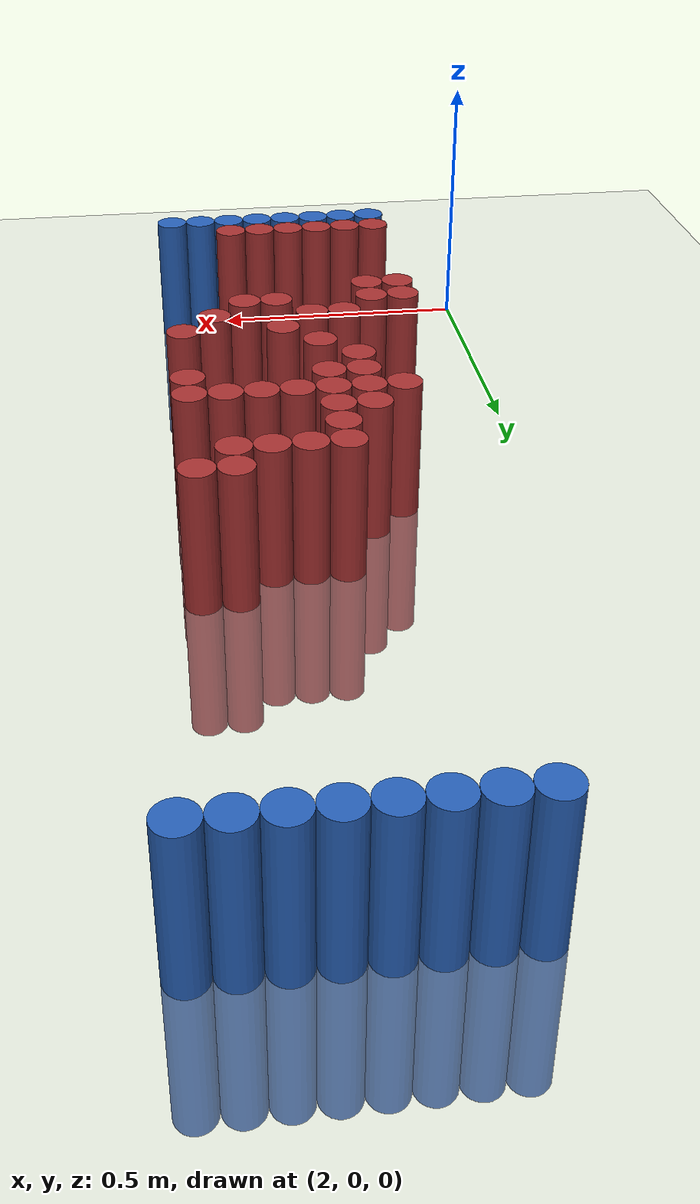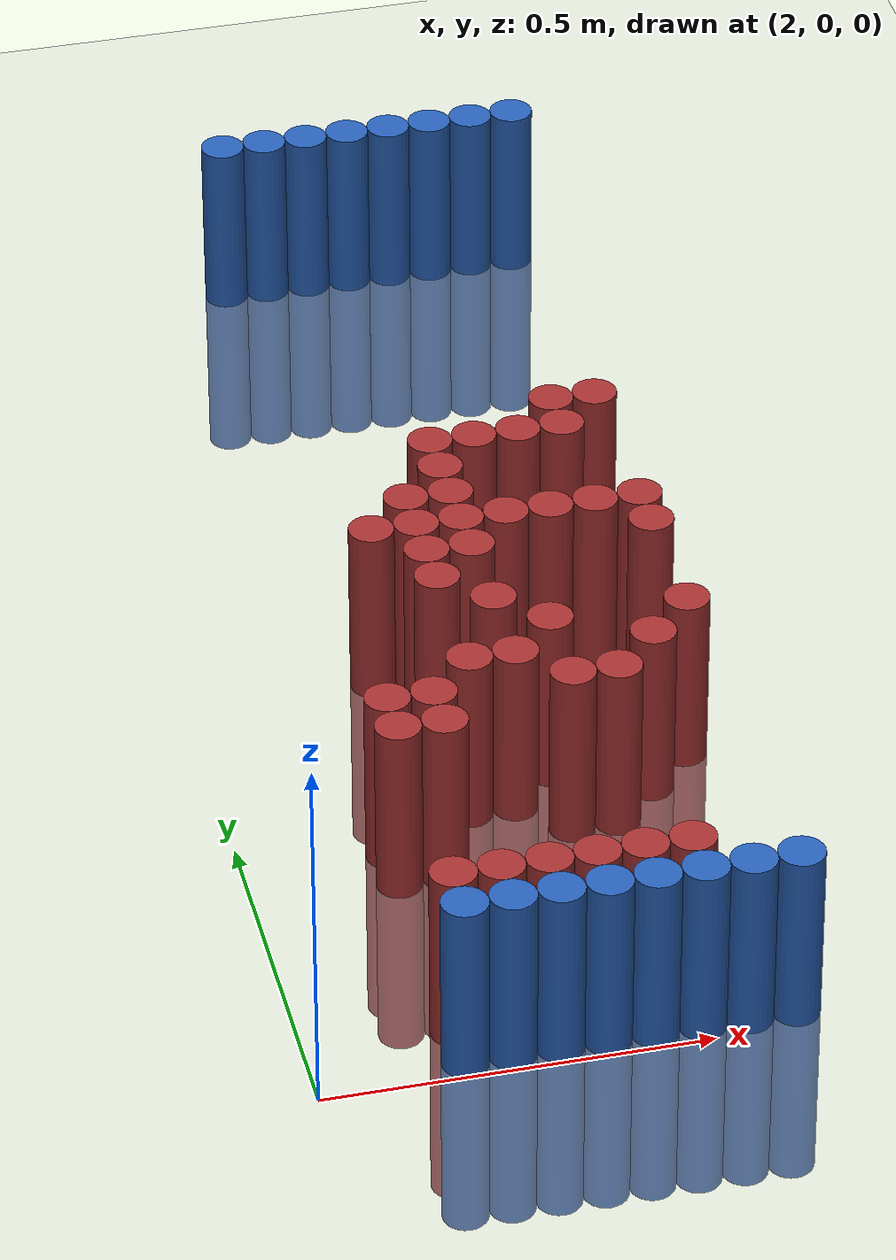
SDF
<sdf version="1.6">
 <world name="default">
  <model name="ground_plane">
   <static>1</static>
   <link name="link">
    <collision name="collision">
     <geometry><plane><normal>0 0 1</normal><size>100 100</size></plane></geometry>
     <surface><friction><ode><mu>100</mu><mu2>50</mu2></ode></friction></surface>
    </collision>
    <visual name="visual">
     <cast_shadows>0</cast_shadows>
     <geometry><plane><normal>0 0 1</normal><size>100 100</size></plane></geometry>
     <material>
      <script><uri>file://media/materials/scripts/gazebo.material</uri><name>Gazebo/Grey</name></script>
     </material>
    </visual>
   </link>
  </model>
  <model name="unit_cylinder_98">
   <static>1</static>
   <pose>2.250000 1.770000 0.000000 0.000000 0.000000 0.000000</pose>
   <link name="link">
    <inertial>
     <mass>1</mass>
     <inertia><ixx>0.145833</ixx><ixy>0</ixy><ixz>0</ixz><iyy>0.145833</iyy><iyz>0</iyz><izz>0.125</izz></inertia>
    </inertial>
    <collision name="collision">
     <geometry><cylinder><radius>0.030000</radius><length>0.5</length></cylinder></geometry>
    </collision>
    <visual name="visual">
     <geometry><cylinder><radius>0.030000</radius><length>0.5</length></cylinder></geometry>
     <material>
      <ambient>0.152000 0.379000 0.720000 1</ambient>
      <diffuse>0.152000 0.379000 0.720000 1</diffuse>
     </material>
     <material>
      <script><name>Gazebo/Grey</name><uri>file://media/materials/scripts/gazebo.material</uri></script>
     </material>
    </visual>
   </link>
  </model>
  <model name="unit_cylinder_99">
   <static>1</static>
   <pose>2.310000 1.770000 0.000000 0.000000 0.000000 0.000000</pose>
   <link name="link">
    <inertial>
     <mass>1</mass>
     <inertia><ixx>0.145833</ixx><ixy>0</ixy><ixz>0</ixz><iyy>0.145833</iyy><iyz>0</iyz><izz>0.125</izz></inertia>
    </inertial>
    <collision name="collision">
     <geometry><cylinder><radius>0.030000</radius><length>0.5</length></cylinder></geometry>
    </collision>
    <visual name="visual">
     <geometry><cylinder><radius>0.030000</radius><length>0.5</length></cylinder></geometry>
     <material>
      <ambient>0.152000 0.379000 0.720000 1</ambient>
      <diffuse>0.152000 0.379000 0.720000 1</diffuse>
     </material>
     <material>
      <script><name>Gazebo/Grey</name><uri>file://media/materials/scripts/gazebo.material</uri></script>
     </material>
    </visual>
   </link>
  </model>
  <model name="unit_cylinder_100">
   <static>1</static>
   <pose>2.370000 1.770000 0.000000 0.000000 0.000000 0.000000</pose>
   <link name="link">
    <inertial>
     <mass>1</mass>
     <inertia><ixx>0.145833</ixx><ixy>0</ixy><ixz>0</ixz><iyy>0.145833</iyy><iyz>0</iyz><izz>0.125</izz></inertia>
    </inertial>
    <collision name="collision">
     <geometry><cylinder><radius>0.030000</radius><length>0.5</length></cylinder></geometry>
    </collision>
    <visual name="visual">
     <geometry><cylinder><radius>0.030000</radius><length>0.5</length></cylinder></geometry>
     <material>
      <ambient>0.152000 0.379000 0.720000 1</ambient>
      <diffuse>0.152000 0.379000 0.720000 1</diffuse>
     </material>
     <material>
      <script><name>Gazebo/Grey</name><uri>file://media/materials/scripts/gazebo.material</uri></script>
     </material>
    </visual>
   </link>
  </model>
  <model name="unit_cylinder_101">
   <static>1</static>
   <pose>2.430000 1.770000 0.000000 0.000000 0.000000 0.000000</pose>
   <link name="link">
    <inertial>
     <mass>1</mass>
     <inertia><ixx>0.145833</ixx><ixy>0</ixy><ixz>0</ixz><iyy>0.145833</iyy><iyz>0</iyz><izz>0.125</izz></inertia>
    </inertial>
    <collision name="collision">
     <geometry><cylinder><radius>0.030000</radius><length>0.5</length></cylinder></geometry>
    </collision>
    <visual name="visual">
     <geometry><cylinder><radius>0.030000</radius><length>0.5</length></cylinder></geometry>
     <material>
      <ambient>0.152000 0.379000 0.720000 1</ambient>
      <diffuse>0.152000 0.379000 0.720000 1</diffuse>
     </material>
     <material>
      <script><name>Gazebo/Grey</name><uri>file://media/materials/scripts/gazebo.material</uri></script>
     </material>
    </visual>
   </link>
  </model>
  <model name="unit_cylinder_102">
   <static>1</static>
   <pose>2.490000 1.770000 0.000000 0.000000 0.000000 0.000000</pose>
   <link name="link">
    <inertial>
     <mass>1</mass>
     <inertia><ixx>0.145833</ixx><ixy>0</ixy><ixz>0</ixz><iyy>0.145833</iyy><iyz>0</iyz><izz>0.125</izz></inertia>
    </inertial>
    <collision name="collision">
     <geometry><cylinder><radius>0.030000</radius><length>0.5</length></cylinder></geometry>
    </collision>
    <visual name="visual">
     <geometry><cylinder><radius>0.030000</radius><length>0.5</length></cylinder></geometry>
     <material>
      <ambient>0.152000 0.379000 0.720000 1</ambient>
      <diffuse>0.152000 0.379000 0.720000 1</diffuse>
     </material>
     <material>
      <script><name>Gazebo/Grey</name><uri>file://media/materials/scripts/gazebo.material</uri></script>
     </material>
    </visual>
   </link>
  </model>
  <model name="unit_cylinder_103">
   <static>1</static>
   <pose>2.550000 1.770000 0.000000 0.000000 0.000000 0.000000</pose>
   <link name="link">
    <inertial>
     <mass>1</mass>
     <inertia><ixx>0.145833</ixx><ixy>0</ixy><ixz>0</ixz><iyy>0.145833</iyy><iyz>0</iyz><izz>0.125</izz></inertia>
    </inertial>
    <collision name="collision">
     <geometry><cylinder><radius>0.030000</radius><length>0.5</length></cylinder></geometry>
    </collision>
    <visual name="visual">
     <geometry><cylinder><radius>0.030000</radius><length>0.5</length></cylinder></geometry>
     <material>
      <ambient>0.152000 0.379000 0.720000 1</ambient>
      <diffuse>0.152000 0.379000 0.720000 1</diffuse>
     </material>
     <material>
      <script><name>Gazebo/Grey</name><uri>file://media/materials/scripts/gazebo.material</uri></script>
     </material>
    </visual>
   </link>
  </model>
  <model name="unit_cylinder_104">
   <static>1</static>
   <pose>2.610000 1.770000 0.000000 0.000000 0.000000 0.000000</pose>
   <link name="link">
    <inertial>
     <mass>1</mass>
     <inertia><ixx>0.145833</ixx><ixy>0</ixy><ixz>0</ixz><iyy>0.145833</iyy><iyz>0</iyz><izz>0.125</izz></inertia>
    </inertial>
    <collision name="collision">
     <geometry><cylinder><radius>0.030000</radius><length>0.5</length></cylinder></geometry>
    </collision>
    <visual name="visual">
     <geometry><cylinder><radius>0.030000</radius><length>0.5</length></cylinder></geometry>
     <material>
      <ambient>0.152000 0.379000 0.720000 1</ambient>
      <diffuse>0.152000 0.379000 0.720000 1</diffuse>
     </material>
     <material>
      <script><name>Gazebo/Grey</name><uri>file://media/materials/scripts/gazebo.material</uri></script>
     </material>
    </visual>
   </link>
  </model>
  <model name="unit_cylinder_105">
   <static>1</static>
   <pose>2.670000 1.770000 0.000000 0.000000 0.000000 0.000000</pose>
   <link name="link">
    <inertial>
     <mass>1</mass>
     <inertia><ixx>0.145833</ixx><ixy>0</ixy><ixz>0</ixz><iyy>0.145833</iyy><iyz>0</iyz><izz>0.125</izz></inertia>
    </inertial>
    <collision name="collision">
     <geometry><cylinder><radius>0.030000</radius><length>0.5</length></cylinder></geometry>
    </collision>
    <visual name="visual">
     <geometry><cylinder><radius>0.030000</radius><length>0.5</length></cylinder></geometry>
     <material>
      <ambient>0.152000 0.379000 0.720000 1</ambient>
      <diffuse>0.152000 0.379000 0.720000 1</diffuse>
     </material>
     <material>
      <script><name>Gazebo/Grey</name><uri>file://media/materials/scripts/gazebo.material</uri></script>
     </material>
    </visual>
   </link>
  </model>
  <model name="unit_cylinder_172">
   <static>1</static>
   <pose>2.550000 1.050000 0.000000 0.000000 0.000000 0.000000</pose>
   <link name="link">
    <inertial>
     <mass>1</mass>
     <inertia><ixx>0.145833</ixx><ixy>0</ixy><ixz>0</ixz><iyy>0.145833</iyy><iyz>0</iyz><izz>0.125</izz></inertia>
    </inertial>
    <collision name="collision">
     <geometry><cylinder><radius>0.030000</radius><length>0.5</length></cylinder></geometry>
    </collision>
    <visual name="visual">
     <geometry><cylinder><radius>0.030000</radius><length>0.5</length></cylinder></geometry>
     <material>
      <ambient>0.648000 0.192000 0.192000 1</ambient>
      <diffuse>0.648000 0.192000 0.192000 1</diffuse>
     </material>
     <material>
      <script><name>Gazebo/Grey</name><uri>file://media/materials/scripts/gazebo.material</uri></script>
     </material>
    </visual>
   </link>
  </model>
  <model name="unit_cylinder_173">
   <static>1</static>
   <pose>2.610000 1.050000 0.000000 0.000000 0.000000 0.000000</pose>
   <link name="link">
    <inertial>
     <mass>1</mass>
     <inertia><ixx>0.145833</ixx><ixy>0</ixy><ixz>0</ixz><iyy>0.145833</iyy><iyz>0</iyz><izz>0.125</izz></inertia>
    </inertial>
    <collision name="collision">
     <geometry><cylinder><radius>0.030000</radius><length>0.5</length></cylinder></geometry>
    </collision>
    <visual name="visual">
     <geometry><cylinder><radius>0.030000</radius><length>0.5</length></cylinder></geometry>
     <material>
      <ambient>0.648000 0.192000 0.192000 1</ambient>
      <diffuse>0.648000 0.192000 0.192000 1</diffuse>
     </material>
     <material>
      <script><name>Gazebo/Grey</name><uri>file://media/materials/scripts/gazebo.material</uri></script>
     </material>
    </visual>
   </link>
  </model>
  <model name="unit_cylinder_179">
   <static>1</static>
   <pose>2.370000 0.990000 0.000000 0.000000 0.000000 0.000000</pose>
   <link name="link">
    <inertial>
     <mass>1</mass>
     <inertia><ixx>0.145833</ixx><ixy>0</ixy><ixz>0</ixz><iyy>0.145833</iyy><iyz>0</iyz><izz>0.125</izz></inertia>
    </inertial>
    <collision name="collision">
     <geometry><cylinder><radius>0.030000</radius><length>0.5</length></cylinder></geometry>
    </collision>
    <visual name="visual">
     <geometry><cylinder><radius>0.030000</radius><length>0.5</length></cylinder></geometry>
     <material>
      <ambient>0.648000 0.192000 0.192000 1</ambient>
      <diffuse>0.648000 0.192000 0.192000 1</diffuse>
     </material>
     <material>
      <script><name>Gazebo/Grey</name><uri>file://media/materials/scripts/gazebo.material</uri></script>
     </material>
    </visual>
   </link>
  </model>
  <model name="unit_cylinder_180">
   <static>1</static>
   <pose>2.430000 0.990000 0.000000 0.000000 0.000000 0.000000</pose>
   <link name="link">
    <inertial>
     <mass>1</mass>
     <inertia><ixx>0.145833</ixx><ixy>0</ixy><ixz>0</ixz><iyy>0.145833</iyy><iyz>0</iyz><izz>0.125</izz></inertia>
    </inertial>
    <collision name="collision">
     <geometry><cylinder><radius>0.030000</radius><length>0.5</length></cylinder></geometry>
    </collision>
    <visual name="visual">
     <geometry><cylinder><radius>0.030000</radius><length>0.5</length></cylinder></geometry>
     <material>
      <ambient>0.648000 0.192000 0.192000 1</ambient>
      <diffuse>0.648000 0.192000 0.192000 1</diffuse>
     </material>
     <material>
      <script><name>Gazebo/Grey</name><uri>file://media/materials/scripts/gazebo.material</uri></script>
     </material>
    </visual>
   </link>
  </model>
  <model name="unit_cylinder_181">
   <static>1</static>
   <pose>2.490000 0.990000 0.000000 0.000000 0.000000 0.000000</pose>
   <link name="link">
    <inertial>
     <mass>1</mass>
     <inertia><ixx>0.145833</ixx><ixy>0</ixy><ixz>0</ixz><iyy>0.145833</iyy><iyz>0</iyz><izz>0.125</izz></inertia>
    </inertial>
    <collision name="collision">
     <geometry><cylinder><radius>0.030000</radius><length>0.5</length></cylinder></geometry>
    </collision>
    <visual name="visual">
     <geometry><cylinder><radius>0.030000</radius><length>0.5</length></cylinder></geometry>
     <material>
      <ambient>0.648000 0.192000 0.192000 1</ambient>
      <diffuse>0.648000 0.192000 0.192000 1</diffuse>
     </material>
     <material>
      <script><name>Gazebo/Grey</name><uri>file://media/materials/scripts/gazebo.material</uri></script>
     </material>
    </visual>
   </link>
  </model>
  <model name="unit_cylinder_182">
   <static>1</static>
   <pose>2.550000 0.990000 0.000000 0.000000 0.000000 0.000000</pose>
   <link name="link">
    <inertial>
     <mass>1</mass>
     <inertia><ixx>0.145833</ixx><ixy>0</ixy><ixz>0</ixz><iyy>0.145833</iyy><iyz>0</iyz><izz>0.125</izz></inertia>
    </inertial>
    <collision name="collision">
     <geometry><cylinder><radius>0.030000</radius><length>0.5</length></cylinder></geometry>
    </collision>
    <visual name="visual">
     <geometry><cylinder><radius>0.030000</radius><length>0.5</length></cylinder></geometry>
     <material>
      <ambient>0.648000 0.192000 0.192000 1</ambient>
      <diffuse>0.648000 0.192000 0.192000 1</diffuse>
     </material>
     <material>
      <script><name>Gazebo/Grey</name><uri>file://media/materials/scripts/gazebo.material</uri></script>
     </material>
    </visual>
   </link>
  </model>
  <model name="unit_cylinder_188">
   <static>1</static>
   <pose>2.370000 0.930000 0.000000 0.000000 0.000000 0.000000</pose>
   <link name="link">
    <inertial>
     <mass>1</mass>
     <inertia><ixx>0.145833</ixx><ixy>0</ixy><ixz>0</ixz><iyy>0.145833</iyy><iyz>0</iyz><izz>0.125</izz></inertia>
    </inertial>
    <collision name="collision">
     <geometry><cylinder><radius>0.030000</radius><length>0.5</length></cylinder></geometry>
    </collision>
    <visual name="visual">
     <geometry><cylinder><radius>0.030000</radius><length>0.5</length></cylinder></geometry>
     <material>
      <ambient>0.648000 0.192000 0.192000 1</ambient>
      <diffuse>0.648000 0.192000 0.192000 1</diffuse>
     </material>
     <material>
      <script><name>Gazebo/Grey</name><uri>file://media/materials/scripts/gazebo.material</uri></script>
     </material>
    </visual>
   </link>
  </model>
  <model name="unit_cylinder_191">
   <static>1</static>
   <pose>2.310000 0.870000 0.000000 0.000000 0.000000 0.000000</pose>
   <link name="link">
    <inertial>
     <mass>1</mass>
     <inertia><ixx>0.145833</ixx><ixy>0</ixy><ixz>0</ixz><iyy>0.145833</iyy><iyz>0</iyz><izz>0.125</izz></inertia>
    </inertial>
    <collision name="collision">
     <geometry><cylinder><radius>0.030000</radius><length>0.5</length></cylinder></geometry>
    </collision>
    <visual name="visual">
     <geometry><cylinder><radius>0.030000</radius><length>0.5</length></cylinder></geometry>
     <material>
      <ambient>0.648000 0.192000 0.192000 1</ambient>
      <diffuse>0.648000 0.192000 0.192000 1</diffuse>
     </material>
     <material>
      <script><name>Gazebo/Grey</name><uri>file://media/materials/scripts/gazebo.material</uri></script>
     </material>
    </visual>
   </link>
  </model>
  <model name="unit_cylinder_192">
   <static>1</static>
   <pose>2.370000 0.870000 0.000000 0.000000 0.000000 0.000000</pose>
   <link name="link">
    <inertial>
     <mass>1</mass>
     <inertia><ixx>0.145833</ixx><ixy>0</ixy><ixz>0</ixz><iyy>0.145833</iyy><iyz>0</iyz><izz>0.125</izz></inertia>
    </inertial>
    <collision name="collision">
     <geometry><cylinder><radius>0.030000</radius><length>0.5</length></cylinder></geometry>
    </collision>
    <visual name="visual">
     <geometry><cylinder><radius>0.030000</radius><length>0.5</length></cylinder></geometry>
     <material>
      <ambient>0.648000 0.192000 0.192000 1</ambient>
      <diffuse>0.648000 0.192000 0.192000 1</diffuse>
     </material>
     <material>
      <script><name>Gazebo/Grey</name><uri>file://media/materials/scripts/gazebo.material</uri></script>
     </material>
    </visual>
   </link>
  </model>
  <model name="unit_cylinder_198">
   <static>1</static>
   <pose>2.250000 0.810000 0.000000 0.000000 0.000000 0.000000</pose>
   <link name="link">
    <inertial>
     <mass>1</mass>
     <inertia><ixx>0.145833</ixx><ixy>0</ixy><ixz>0</ixz><iyy>0.145833</iyy><iyz>0</iyz><izz>0.125</izz></inertia>
    </inertial>
    <collision name="collision">
     <geometry><cylinder><radius>0.030000</radius><length>0.5</length></cylinder></geometry>
    </collision>
    <visual name="visual">
     <geometry><cylinder><radius>0.030000</radius><length>0.5</length></cylinder></geometry>
     <material>
      <ambient>0.648000 0.192000 0.192000 1</ambient>
      <diffuse>0.648000 0.192000 0.192000 1</diffuse>
     </material>
     <material>
      <script><name>Gazebo/Grey</name><uri>file://media/materials/scripts/gazebo.material</uri></script>
     </material>
    </visual>
   </link>
  </model>
  <model name="unit_cylinder_199">
   <static>1</static>
   <pose>2.310000 0.810000 0.000000 0.000000 0.000000 0.000000</pose>
   <link name="link">
    <inertial>
     <mass>1</mass>
     <inertia><ixx>0.145833</ixx><ixy>0</ixy><ixz>0</ixz><iyy>0.145833</iyy><iyz>0</iyz><izz>0.125</izz></inertia>
    </inertial>
    <collision name="collision">
     <geometry><cylinder><radius>0.030000</radius><length>0.5</length></cylinder></geometry>
    </collision>
    <visual name="visual">
     <geometry><cylinder><radius>0.030000</radius><length>0.5</length></cylinder></geometry>
     <material>
      <ambient>0.648000 0.192000 0.192000 1</ambient>
      <diffuse>0.648000 0.192000 0.192000 1</diffuse>
     </material>
     <material>
      <script><name>Gazebo/Grey</name><uri>file://media/materials/scripts/gazebo.material</uri></script>
     </material>
    </visual>
   </link>
  </model>
  <model name="unit_cylinder_200">
   <static>1</static>
   <pose>2.370000 0.810000 0.000000 0.000000 0.000000 0.000000</pose>
   <link name="link">
    <inertial>
     <mass>1</mass>
     <inertia><ixx>0.145833</ixx><ixy>0</ixy><ixz>0</ixz><iyy>0.145833</iyy><iyz>0</iyz><izz>0.125</izz></inertia>
    </inertial>
    <collision name="collision">
     <geometry><cylinder><radius>0.030000</radius><length>0.5</length></cylinder></geometry>
    </collision>
    <visual name="visual">
     <geometry><cylinder><radius>0.030000</radius><length>0.5</length></cylinder></geometry>
     <material>
      <ambient>0.648000 0.192000 0.192000 1</ambient>
      <diffuse>0.648000 0.192000 0.192000 1</diffuse>
     </material>
     <material>
      <script><name>Gazebo/Grey</name><uri>file://media/materials/scripts/gazebo.material</uri></script>
     </material>
    </visual>
   </link>
  </model>
  <model name="unit_cylinder_201">
   <static>1</static>
   <pose>2.430000 0.810000 0.000000 0.000000 0.000000 0.000000</pose>
   <link name="link">
    <inertial>
     <mass>1</mass>
     <inertia><ixx>0.145833</ixx><ixy>0</ixy><ixz>0</ixz><iyy>0.145833</iyy><iyz>0</iyz><izz>0.125</izz></inertia>
    </inertial>
    <collision name="collision">
     <geometry><cylinder><radius>0.030000</radius><length>0.5</length></cylinder></geometry>
    </collision>
    <visual name="visual">
     <geometry><cylinder><radius>0.030000</radius><length>0.5</length></cylinder></geometry>
     <material>
      <ambient>0.648000 0.192000 0.192000 1</ambient>
      <diffuse>0.648000 0.192000 0.192000 1</diffuse>
     </material>
     <material>
      <script><name>Gazebo/Grey</name><uri>file://media/materials/scripts/gazebo.material</uri></script>
     </material>
    </visual>
   </link>
  </model>
  <model name="unit_cylinder_202">
   <static>1</static>
   <pose>2.490000 0.810000 0.000000 0.000000 0.000000 0.000000</pose>
   <link name="link">
    <inertial>
     <mass>1</mass>
     <inertia><ixx>0.145833</ixx><ixy>0</ixy><ixz>0</ixz><iyy>0.145833</iyy><iyz>0</iyz><izz>0.125</izz></inertia>
    </inertial>
    <collision name="collision">
     <geometry><cylinder><radius>0.030000</radius><length>0.5</length></cylinder></geometry>
    </collision>
    <visual name="visual">
     <geometry><cylinder><radius>0.030000</radius><length>0.5</length></cylinder></geometry>
     <material>
      <ambient>0.648000 0.192000 0.192000 1</ambient>
      <diffuse>0.648000 0.192000 0.192000 1</diffuse>
     </material>
     <material>
      <script><name>Gazebo/Grey</name><uri>file://media/materials/scripts/gazebo.material</uri></script>
     </material>
    </visual>
   </link>
  </model>
  <model name="unit_cylinder_203">
   <static>1</static>
   <pose>2.550000 0.810000 0.000000 0.000000 0.000000 0.000000</pose>
   <link name="link">
    <inertial>
     <mass>1</mass>
     <inertia><ixx>0.145833</ixx><ixy>0</ixy><ixz>0</ixz><iyy>0.145833</iyy><iyz>0</iyz><izz>0.125</izz></inertia>
    </inertial>
    <collision name="collision">
     <geometry><cylinder><radius>0.030000</radius><length>0.5</length></cylinder></geometry>
    </collision>
    <visual name="visual">
     <geometry><cylinder><radius>0.030000</radius><length>0.5</length></cylinder></geometry>
     <material>
      <ambient>0.648000 0.192000 0.192000 1</ambient>
      <diffuse>0.648000 0.192000 0.192000 1</diffuse>
     </material>
     <material>
      <script><name>Gazebo/Grey</name><uri>file://media/materials/scripts/gazebo.material</uri></script>
     </material>
    </visual>
   </link>
  </model>
  <model name="unit_cylinder_204">
   <static>1</static>
   <pose>2.610000 0.810000 0.000000 0.000000 0.000000 0.000000</pose>
   <link name="link">
    <inertial>
     <mass>1</mass>
     <inertia><ixx>0.145833</ixx><ixy>0</ixy><ixz>0</ixz><iyy>0.145833</iyy><iyz>0</iyz><izz>0.125</izz></inertia>
    </inertial>
    <collision name="collision">
     <geometry><cylinder><radius>0.030000</radius><length>0.5</length></cylinder></geometry>
    </collision>
    <visual name="visual">
     <geometry><cylinder><radius>0.030000</radius><length>0.5</length></cylinder></geometry>
     <material>
      <ambient>0.648000 0.192000 0.192000 1</ambient>
      <diffuse>0.648000 0.192000 0.192000 1</diffuse>
     </material>
     <material>
      <script><name>Gazebo/Grey</name><uri>file://media/materials/scripts/gazebo.material</uri></script>
     </material>
    </visual>
   </link>
  </model>
  <model name="unit_cylinder_211">
   <static>1</static>
   <pose>2.310000 0.750000 0.000000 0.000000 0.000000 0.000000</pose>
   <link name="link">
    <inertial>
     <mass>1</mass>
     <inertia><ixx>0.145833</ixx><ixy>0</ixy><ixz>0</ixz><iyy>0.145833</iyy><iyz>0</iyz><izz>0.125</izz></inertia>
    </inertial>
    <collision name="collision">
     <geometry><cylinder><radius>0.030000</radius><length>0.5</length></cylinder></geometry>
    </collision>
    <visual name="visual">
     <geometry><cylinder><radius>0.030000</radius><length>0.5</length></cylinder></geometry>
     <material>
      <ambient>0.648000 0.192000 0.192000 1</ambient>
      <diffuse>0.648000 0.192000 0.192000 1</diffuse>
     </material>
     <material>
      <script><name>Gazebo/Grey</name><uri>file://media/materials/scripts/gazebo.material</uri></script>
     </material>
    </visual>
   </link>
  </model>
  <model name="unit_cylinder_212">
   <static>1</static>
   <pose>2.370000 0.750000 0.000000 0.000000 0.000000 0.000000</pose>
   <link name="link">
    <inertial>
     <mass>1</mass>
     <inertia><ixx>0.145833</ixx><ixy>0</ixy><ixz>0</ixz><iyy>0.145833</iyy><iyz>0</iyz><izz>0.125</izz></inertia>
    </inertial>
    <collision name="collision">
     <geometry><cylinder><radius>0.030000</radius><length>0.5</length></cylinder></geometry>
    </collision>
    <visual name="visual">
     <geometry><cylinder><radius>0.030000</radius><length>0.5</length></cylinder></geometry>
     <material>
      <ambient>0.648000 0.192000 0.192000 1</ambient>
      <diffuse>0.648000 0.192000 0.192000 1</diffuse>
     </material>
     <material>
      <script><name>Gazebo/Grey</name><uri>file://media/materials/scripts/gazebo.material</uri></script>
     </material>
    </visual>
   </link>
  </model>
  <model name="unit_cylinder_213">
   <static>1</static>
   <pose>2.610000 0.750000 0.000000 0.000000 0.000000 0.000000</pose>
   <link name="link">
    <inertial>
     <mass>1</mass>
     <inertia><ixx>0.145833</ixx><ixy>0</ixy><ixz>0</ixz><iyy>0.145833</iyy><iyz>0</iyz><izz>0.125</izz></inertia>
    </inertial>
    <collision name="collision">
     <geometry><cylinder><radius>0.030000</radius><length>0.5</length></cylinder></geometry>
    </collision>
    <visual name="visual">
     <geometry><cylinder><radius>0.030000</radius><length>0.5</length></cylinder></geometry>
     <material>
      <ambient>0.648000 0.192000 0.192000 1</ambient>
      <diffuse>0.648000 0.192000 0.192000 1</diffuse>
     </material>
     <material>
      <script><name>Gazebo/Grey</name><uri>file://media/materials/scripts/gazebo.material</uri></script>
     </material>
    </visual>
   </link>
  </model>
  <model name="unit_cylinder_217">
   <static>1</static>
   <pose>2.310000 0.690000 0.000000 0.000000 0.000000 0.000000</pose>
   <link name="link">
    <inertial>
     <mass>1</mass>
     <inertia><ixx>0.145833</ixx><ixy>0</ixy><ixz>0</ixz><iyy>0.145833</iyy><iyz>0</iyz><izz>0.125</izz></inertia>
    </inertial>
    <collision name="collision">
     <geometry><cylinder><radius>0.030000</radius><length>0.5</length></cylinder></geometry>
    </collision>
    <visual name="visual">
     <geometry><cylinder><radius>0.030000</radius><length>0.5</length></cylinder></geometry>
     <material>
      <ambient>0.648000 0.192000 0.192000 1</ambient>
      <diffuse>0.648000 0.192000 0.192000 1</diffuse>
     </material>
     <material>
      <script><name>Gazebo/Grey</name><uri>file://media/materials/scripts/gazebo.material</uri></script>
     </material>
    </visual>
   </link>
  </model>
  <model name="unit_cylinder_220">
   <static>1</static>
   <pose>2.370000 0.630000 0.000000 0.000000 0.000000 0.000000</pose>
   <link name="link">
    <inertial>
     <mass>1</mass>
     <inertia><ixx>0.145833</ixx><ixy>0</ixy><ixz>0</ixz><iyy>0.145833</iyy><iyz>0</iyz><izz>0.125</izz></inertia>
    </inertial>
    <collision name="collision">
     <geometry><cylinder><radius>0.030000</radius><length>0.5</length></cylinder></geometry>
    </collision>
    <visual name="visual">
     <geometry><cylinder><radius>0.030000</radius><length>0.5</length></cylinder></geometry>
     <material>
      <ambient>0.648000 0.192000 0.192000 1</ambient>
      <diffuse>0.648000 0.192000 0.192000 1</diffuse>
     </material>
     <material>
      <script><name>Gazebo/Grey</name><uri>file://media/materials/scripts/gazebo.material</uri></script>
     </material>
    </visual>
   </link>
  </model>
  <model name="unit_cylinder_228">
   <static>1</static>
   <pose>2.430000 0.570000 0.000000 0.000000 0.000000 0.000000</pose>
   <link name="link">
    <inertial>
     <mass>1</mass>
     <inertia><ixx>0.145833</ixx><ixy>0</ixy><ixz>0</ixz><iyy>0.145833</iyy><iyz>0</iyz><izz>0.125</izz></inertia>
    </inertial>
    <collision name="collision">
     <geometry><cylinder><radius>0.030000</radius><length>0.5</length></cylinder></geometry>
    </collision>
    <visual name="visual">
     <geometry><cylinder><radius>0.030000</radius><length>0.5</length></cylinder></geometry>
     <material>
      <ambient>0.648000 0.192000 0.192000 1</ambient>
      <diffuse>0.648000 0.192000 0.192000 1</diffuse>
     </material>
     <material>
      <script><name>Gazebo/Grey</name><uri>file://media/materials/scripts/gazebo.material</uri></script>
     </material>
    </visual>
   </link>
  </model>
  <model name="unit_cylinder_229">
   <static>1</static>
   <pose>2.610000 0.570000 0.000000 0.000000 0.000000 0.000000</pose>
   <link name="link">
    <inertial>
     <mass>1</mass>
     <inertia><ixx>0.145833</ixx><ixy>0</ixy><ixz>0</ixz><iyy>0.145833</iyy><iyz>0</iyz><izz>0.125</izz></inertia>
    </inertial>
    <collision name="collision">
     <geometry><cylinder><radius>0.030000</radius><length>0.5</length></cylinder></geometry>
    </collision>
    <visual name="visual">
     <geometry><cylinder><radius>0.030000</radius><length>0.5</length></cylinder></geometry>
     <material>
      <ambient>0.648000 0.192000 0.192000 1</ambient>
      <diffuse>0.648000 0.192000 0.192000 1</diffuse>
     </material>
     <material>
      <script><name>Gazebo/Grey</name><uri>file://media/materials/scripts/gazebo.material</uri></script>
     </material>
    </visual>
   </link>
  </model>
  <model name="unit_cylinder_235">
   <static>1</static>
   <pose>2.310000 0.510000 0.000000 0.000000 0.000000 0.000000</pose>
   <link name="link">
    <inertial>
     <mass>1</mass>
     <inertia><ixx>0.145833</ixx><ixy>0</ixy><ixz>0</ixz><iyy>0.145833</iyy><iyz>0</iyz><izz>0.125</izz></inertia>
    </inertial>
    <collision name="collision">
     <geometry><cylinder><radius>0.030000</radius><length>0.5</length></cylinder></geometry>
    </collision>
    <visual name="visual">
     <geometry><cylinder><radius>0.030000</radius><length>0.5</length></cylinder></geometry>
     <material>
      <ambient>0.648000 0.192000 0.192000 1</ambient>
      <diffuse>0.648000 0.192000 0.192000 1</diffuse>
     </material>
     <material>
      <script><name>Gazebo/Grey</name><uri>file://media/materials/scripts/gazebo.material</uri></script>
     </material>
    </visual>
   </link>
  </model>
  <model name="unit_cylinder_236">
   <static>1</static>
   <pose>2.370000 0.510000 0.000000 0.000000 0.000000 0.000000</pose>
   <link name="link">
    <inertial>
     <mass>1</mass>
     <inertia><ixx>0.145833</ixx><ixy>0</ixy><ixz>0</ixz><iyy>0.145833</iyy><iyz>0</iyz><izz>0.125</izz></inertia>
    </inertial>
    <collision name="collision">
     <geometry><cylinder><radius>0.030000</radius><length>0.5</length></cylinder></geometry>
    </collision>
    <visual name="visual">
     <geometry><cylinder><radius>0.030000</radius><length>0.5</length></cylinder></geometry>
     <material>
      <ambient>0.648000 0.192000 0.192000 1</ambient>
      <diffuse>0.648000 0.192000 0.192000 1</diffuse>
     </material>
     <material>
      <script><name>Gazebo/Grey</name><uri>file://media/materials/scripts/gazebo.material</uri></script>
     </material>
    </visual>
   </link>
  </model>
  <model name="unit_cylinder_237">
   <static>1</static>
   <pose>2.550000 0.510000 0.000000 0.000000 0.000000 0.000000</pose>
   <link name="link">
    <inertial>
     <mass>1</mass>
     <inertia><ixx>0.145833</ixx><ixy>0</ixy><ixz>0</ixz><iyy>0.145833</iyy><iyz>0</iyz><izz>0.125</izz></inertia>
    </inertial>
    <collision name="collision">
     <geometry><cylinder><radius>0.030000</radius><length>0.5</length></cylinder></geometry>
    </collision>
    <visual name="visual">
     <geometry><cylinder><radius>0.030000</radius><length>0.5</length></cylinder></geometry>
     <material>
      <ambient>0.648000 0.192000 0.192000 1</ambient>
      <diffuse>0.648000 0.192000 0.192000 1</diffuse>
     </material>
     <material>
      <script><name>Gazebo/Grey</name><uri>file://media/materials/scripts/gazebo.material</uri></script>
     </material>
    </visual>
   </link>
  </model>
  <model name="unit_cylinder_240">
   <static>1</static>
   <pose>2.190000 0.450000 0.000000 0.000000 0.000000 0.000000</pose>
   <link name="link">
    <inertial>
     <mass>1</mass>
     <inertia><ixx>0.145833</ixx><ixy>0</ixy><ixz>0</ixz><iyy>0.145833</iyy><iyz>0</iyz><izz>0.125</izz></inertia>
    </inertial>
    <collision name="collision">
     <geometry><cylinder><radius>0.030000</radius><length>0.5</length></cylinder></geometry>
    </collision>
    <visual name="visual">
     <geometry><cylinder><radius>0.030000</radius><length>0.5</length></cylinder></geometry>
     <material>
      <ambient>0.648000 0.192000 0.192000 1</ambient>
      <diffuse>0.648000 0.192000 0.192000 1</diffuse>
     </material>
     <material>
      <script><name>Gazebo/Grey</name><uri>file://media/materials/scripts/gazebo.material</uri></script>
     </material>
    </visual>
   </link>
  </model>
  <model name="unit_cylinder_241">
   <static>1</static>
   <pose>2.250000 0.450000 0.000000 0.000000 0.000000 0.000000</pose>
   <link name="link">
    <inertial>
     <mass>1</mass>
     <inertia><ixx>0.145833</ixx><ixy>0</ixy><ixz>0</ixz><iyy>0.145833</iyy><iyz>0</iyz><izz>0.125</izz></inertia>
    </inertial>
    <collision name="collision">
     <geometry><cylinder><radius>0.030000</radius><length>0.5</length></cylinder></geometry>
    </collision>
    <visual name="visual">
     <geometry><cylinder><radius>0.030000</radius><length>0.5</length></cylinder></geometry>
     <material>
      <ambient>0.648000 0.192000 0.192000 1</ambient>
      <diffuse>0.648000 0.192000 0.192000 1</diffuse>
     </material>
     <material>
      <script><name>Gazebo/Grey</name><uri>file://media/materials/scripts/gazebo.material</uri></script>
     </material>
    </visual>
   </link>
  </model>
  <model name="unit_cylinder_242">
   <static>1</static>
   <pose>2.430000 0.450000 0.000000 0.000000 0.000000 0.000000</pose>
   <link name="link">
    <inertial>
     <mass>1</mass>
     <inertia><ixx>0.145833</ixx><ixy>0</ixy><ixz>0</ixz><iyy>0.145833</iyy><iyz>0</iyz><izz>0.125</izz></inertia>
    </inertial>
    <collision name="collision">
     <geometry><cylinder><radius>0.030000</radius><length>0.5</length></cylinder></geometry>
    </collision>
    <visual name="visual">
     <geometry><cylinder><radius>0.030000</radius><length>0.5</length></cylinder></geometry>
     <material>
      <ambient>0.648000 0.192000 0.192000 1</ambient>
      <diffuse>0.648000 0.192000 0.192000 1</diffuse>
     </material>
     <material>
      <script><name>Gazebo/Grey</name><uri>file://media/materials/scripts/gazebo.material</uri></script>
     </material>
    </visual>
   </link>
  </model>
  <model name="unit_cylinder_243">
   <static>1</static>
   <pose>2.490000 0.450000 0.000000 0.000000 0.000000 0.000000</pose>
   <link name="link">
    <inertial>
     <mass>1</mass>
     <inertia><ixx>0.145833</ixx><ixy>0</ixy><ixz>0</ixz><iyy>0.145833</iyy><iyz>0</iyz><izz>0.125</izz></inertia>
    </inertial>
    <collision name="collision">
     <geometry><cylinder><radius>0.030000</radius><length>0.5</length></cylinder></geometry>
    </collision>
    <visual name="visual">
     <geometry><cylinder><radius>0.030000</radius><length>0.5</length></cylinder></geometry>
     <material>
      <ambient>0.648000 0.192000 0.192000 1</ambient>
      <diffuse>0.648000 0.192000 0.192000 1</diffuse>
     </material>
     <material>
      <script><name>Gazebo/Grey</name><uri>file://media/materials/scripts/gazebo.material</uri></script>
     </material>
    </visual>
   </link>
  </model>
  <model name="unit_cylinder_252">
   <static>1</static>
   <pose>2.190000 0.390000 0.000000 0.000000 0.000000 0.000000</pose>
   <link name="link">
    <inertial>
     <mass>1</mass>
     <inertia><ixx>0.145833</ixx><ixy>0</ixy><ixz>0</ixz><iyy>0.145833</iyy><iyz>0</iyz><izz>0.125</izz></inertia>
    </inertial>
    <collision name="collision">
     <geometry><cylinder><radius>0.030000</radius><length>0.5</length></cylinder></geometry>
    </collision>
    <visual name="visual">
     <geometry><cylinder><radius>0.030000</radius><length>0.5</length></cylinder></geometry>
     <material>
      <ambient>0.648000 0.192000 0.192000 1</ambient>
      <diffuse>0.648000 0.192000 0.192000 1</diffuse>
     </material>
     <material>
      <script><name>Gazebo/Grey</name><uri>file://media/materials/scripts/gazebo.material</uri></script>
     </material>
    </visual>
   </link>
  </model>
  <model name="unit_cylinder_253">
   <static>1</static>
   <pose>2.250000 0.390000 0.000000 0.000000 0.000000 0.000000</pose>
   <link name="link">
    <inertial>
     <mass>1</mass>
     <inertia><ixx>0.145833</ixx><ixy>0</ixy><ixz>0</ixz><iyy>0.145833</iyy><iyz>0</iyz><izz>0.125</izz></inertia>
    </inertial>
    <collision name="collision">
     <geometry><cylinder><radius>0.030000</radius><length>0.5</length></cylinder></geometry>
    </collision>
    <visual name="visual">
     <geometry><cylinder><radius>0.030000</radius><length>0.5</length></cylinder></geometry>
     <material>
      <ambient>0.648000 0.192000 0.192000 1</ambient>
      <diffuse>0.648000 0.192000 0.192000 1</diffuse>
     </material>
     <material>
      <script><name>Gazebo/Grey</name><uri>file://media/materials/scripts/gazebo.material</uri></script>
     </material>
    </visual>
   </link>
  </model>
  <model name="unit_cylinder_279">
   <static>1</static>
   <pose>2.190000 0.090000 0.000000 0.000000 0.000000 0.000000</pose>
   <link name="link">
    <inertial>
     <mass>1</mass>
     <inertia><ixx>0.145833</ixx><ixy>0</ixy><ixz>0</ixz><iyy>0.145833</iyy><iyz>0</iyz><izz>0.125</izz></inertia>
    </inertial>
    <collision name="collision">
     <geometry><cylinder><radius>0.030000</radius><length>0.5</length></cylinder></geometry>
    </collision>
    <visual name="visual">
     <geometry><cylinder><radius>0.030000</radius><length>0.5</length></cylinder></geometry>
     <material>
      <ambient>0.648000 0.192000 0.192000 1</ambient>
      <diffuse>0.648000 0.192000 0.192000 1</diffuse>
     </material>
     <material>
      <script><name>Gazebo/Grey</name><uri>file://media/materials/scripts/gazebo.material</uri></script>
     </material>
    </visual>
   </link>
  </model>
  <model name="unit_cylinder_280">
   <static>1</static>
   <pose>2.250000 0.090000 0.000000 0.000000 0.000000 0.000000</pose>
   <link name="link">
    <inertial>
     <mass>1</mass>
     <inertia><ixx>0.145833</ixx><ixy>0</ixy><ixz>0</ixz><iyy>0.145833</iyy><iyz>0</iyz><izz>0.125</izz></inertia>
    </inertial>
    <collision name="collision">
     <geometry><cylinder><radius>0.030000</radius><length>0.5</length></cylinder></geometry>
    </collision>
    <visual name="visual">
     <geometry><cylinder><radius>0.030000</radius><length>0.5</length></cylinder></geometry>
     <material>
      <ambient>0.648000 0.192000 0.192000 1</ambient>
      <diffuse>0.648000 0.192000 0.192000 1</diffuse>
     </material>
     <material>
      <script><name>Gazebo/Grey</name><uri>file://media/materials/scripts/gazebo.material</uri></script>
     </material>
    </visual>
   </link>
  </model>
  <model name="unit_cylinder_281">
   <static>1</static>
   <pose>2.310000 0.090000 0.000000 0.000000 0.000000 0.000000</pose>
   <link name="link">
    <inertial>
     <mass>1</mass>
     <inertia><ixx>0.145833</ixx><ixy>0</ixy><ixz>0</ixz><iyy>0.145833</iyy><iyz>0</iyz><izz>0.125</izz></inertia>
    </inertial>
    <collision name="collision">
     <geometry><cylinder><radius>0.030000</radius><length>0.5</length></cylinder></geometry>
    </collision>
    <visual name="visual">
     <geometry><cylinder><radius>0.030000</radius><length>0.5</length></cylinder></geometry>
     <material>
      <ambient>0.648000 0.192000 0.192000 1</ambient>
      <diffuse>0.648000 0.192000 0.192000 1</diffuse>
     </material>
     <material>
      <script><name>Gazebo/Grey</name><uri>file://media/materials/scripts/gazebo.material</uri></script>
     </material>
    </visual>
   </link>
  </model>
  <model name="unit_cylinder_282">
   <static>1</static>
   <pose>2.370000 0.090000 0.000000 0.000000 0.000000 0.000000</pose>
   <link name="link">
    <inertial>
     <mass>1</mass>
     <inertia><ixx>0.145833</ixx><ixy>0</ixy><ixz>0</ixz><iyy>0.145833</iyy><iyz>0</iyz><izz>0.125</izz></inertia>
    </inertial>
    <collision name="collision">
     <geometry><cylinder><radius>0.030000</radius><length>0.5</length></cylinder></geometry>
    </collision>
    <visual name="visual">
     <geometry><cylinder><radius>0.030000</radius><length>0.5</length></cylinder></geometry>
     <material>
      <ambient>0.648000 0.192000 0.192000 1</ambient>
      <diffuse>0.648000 0.192000 0.192000 1</diffuse>
     </material>
     <material>
      <script><name>Gazebo/Grey</name><uri>file://media/materials/scripts/gazebo.material</uri></script>
     </material>
    </visual>
   </link>
  </model>
  <model name="unit_cylinder_283">
   <static>1</static>
   <pose>2.430000 0.090000 0.000000 0.000000 0.000000 0.000000</pose>
   <link name="link">
    <inertial>
     <mass>1</mass>
     <inertia><ixx>0.145833</ixx><ixy>0</ixy><ixz>0</ixz><iyy>0.145833</iyy><iyz>0</iyz><izz>0.125</izz></inertia>
    </inertial>
    <collision name="collision">
     <geometry><cylinder><radius>0.030000</radius><length>0.5</length></cylinder></geometry>
    </collision>
    <visual name="visual">
     <geometry><cylinder><radius>0.030000</radius><length>0.5</length></cylinder></geometry>
     <material>
      <ambient>0.648000 0.192000 0.192000 1</ambient>
      <diffuse>0.648000 0.192000 0.192000 1</diffuse>
     </material>
     <material>
      <script><name>Gazebo/Grey</name><uri>file://media/materials/scripts/gazebo.material</uri></script>
     </material>
    </visual>
   </link>
  </model>
  <model name="unit_cylinder_284">
   <static>1</static>
   <pose>2.490000 0.090000 0.000000 0.000000 0.000000 0.000000</pose>
   <link name="link">
    <inertial>
     <mass>1</mass>
     <inertia><ixx>0.145833</ixx><ixy>0</ixy><ixz>0</ixz><iyy>0.145833</iyy><iyz>0</iyz><izz>0.125</izz></inertia>
    </inertial>
    <collision name="collision">
     <geometry><cylinder><radius>0.030000</radius><length>0.5</length></cylinder></geometry>
    </collision>
    <visual name="visual">
     <geometry><cylinder><radius>0.030000</radius><length>0.5</length></cylinder></geometry>
     <material>
      <ambient>0.648000 0.192000 0.192000 1</ambient>
      <diffuse>0.648000 0.192000 0.192000 1</diffuse>
     </material>
     <material>
      <script><name>Gazebo/Grey</name><uri>file://media/materials/scripts/gazebo.material</uri></script>
     </material>
    </visual>
   </link>
  </model>
  <model name="unit_cylinder_295">
   <static>1</static>
   <pose>2.190000 0.030000 0.000000 0.000000 0.000000 0.000000</pose>
   <link name="link">
    <inertial>
     <mass>1</mass>
     <inertia><ixx>0.145833</ixx><ixy>0</ixy><ixz>0</ixz><iyy>0.145833</iyy><iyz>0</iyz><izz>0.125</izz></inertia>
    </inertial>
    <collision name="collision">
     <geometry><cylinder><radius>0.030000</radius><length>0.5</length></cylinder></geometry>
    </collision>
    <visual name="visual">
     <geometry><cylinder><radius>0.030000</radius><length>0.5</length></cylinder></geometry>
     <material>
      <ambient>0.152000 0.379000 0.720000 1</ambient>
      <diffuse>0.152000 0.379000 0.720000 1</diffuse>
     </material>
     <material>
      <script><name>Gazebo/Grey</name><uri>file://media/materials/scripts/gazebo.material</uri></script>
     </material>
    </visual>
   </link>
  </model>
  <model name="unit_cylinder_296">
   <static>1</static>
   <pose>2.250000 0.030000 0.000000 0.000000 0.000000 0.000000</pose>
   <link name="link">
    <inertial>
     <mass>1</mass>
     <inertia><ixx>0.145833</ixx><ixy>0</ixy><ixz>0</ixz><iyy>0.145833</iyy><iyz>0</iyz><izz>0.125</izz></inertia>
    </inertial>
    <collision name="collision">
     <geometry><cylinder><radius>0.030000</radius><length>0.5</length></cylinder></geometry>
    </collision>
    <visual name="visual">
     <geometry><cylinder><radius>0.030000</radius><length>0.5</length></cylinder></geometry>
     <material>
      <ambient>0.152000 0.379000 0.720000 1</ambient>
      <diffuse>0.152000 0.379000 0.720000 1</diffuse>
     </material>
     <material>
      <script><name>Gazebo/Grey</name><uri>file://media/materials/scripts/gazebo.material</uri></script>
     </material>
    </visual>
   </link>
  </model>
  <model name="unit_cylinder_297">
   <static>1</static>
   <pose>2.310000 0.030000 0.000000 0.000000 0.000000 0.000000</pose>
   <link name="link">
    <inertial>
     <mass>1</mass>
     <inertia><ixx>0.145833</ixx><ixy>0</ixy><ixz>0</ixz><iyy>0.145833</iyy><iyz>0</iyz><izz>0.125</izz></inertia>
    </inertial>
    <collision name="collision">
     <geometry><cylinder><radius>0.030000</radius><length>0.5</length></cylinder></geometry>
    </collision>
    <visual name="visual">
     <geometry><cylinder><radius>0.030000</radius><length>0.5</length></cylinder></geometry>
     <material>
      <ambient>0.152000 0.379000 0.720000 1</ambient>
      <diffuse>0.152000 0.379000 0.720000 1</diffuse>
     </material>
     <material>
      <script><name>Gazebo/Grey</name><uri>file://media/materials/scripts/gazebo.material</uri></script>
     </material>
    </visual>
   </link>
  </model>
  <model name="unit_cylinder_298">
   <static>1</static>
   <pose>2.370000 0.030000 0.000000 0.000000 0.000000 0.000000</pose>
   <link name="link">
    <inertial>
     <mass>1</mass>
     <inertia><ixx>0.145833</ixx><ixy>0</ixy><ixz>0</ixz><iyy>0.145833</iyy><iyz>0</iyz><izz>0.125</izz></inertia>
    </inertial>
    <collision name="collision">
     <geometry><cylinder><radius>0.030000</radius><length>0.5</length></cylinder></geometry>
    </collision>
    <visual name="visual">
     <geometry><cylinder><radius>0.030000</radius><length>0.5</length></cylinder></geometry>
     <material>
      <ambient>0.152000 0.379000 0.720000 1</ambient>
      <diffuse>0.152000 0.379000 0.720000 1</diffuse>
     </material>
     <material>
      <script><name>Gazebo/Grey</name><uri>file://media/materials/scripts/gazebo.material</uri></script>
     </material>
    </visual>
   </link>
  </model>
  <model name="unit_cylinder_299">
   <static>1</static>
   <pose>2.430000 0.030000 0.000000 0.000000 0.000000 0.000000</pose>
   <link name="link">
    <inertial>
     <mass>1</mass>
     <inertia><ixx>0.145833</ixx><ixy>0</ixy><ixz>0</ixz><iyy>0.145833</iyy><iyz>0</iyz><izz>0.125</izz></inertia>
    </inertial>
    <collision name="collision">
     <geometry><cylinder><radius>0.030000</radius><length>0.5</length></cylinder></geometry>
    </collision>
    <visual name="visual">
     <geometry><cylinder><radius>0.030000</radius><length>0.5</length></cylinder></geometry>
     <material>
      <ambient>0.152000 0.379000 0.720000 1</ambient>
      <diffuse>0.152000 0.379000 0.720000 1</diffuse>
     </material>
     <material>
      <script><name>Gazebo/Grey</name><uri>file://media/materials/scripts/gazebo.material</uri></script>
     </material>
    </visual>
   </link>
  </model>
  <model name="unit_cylinder_300">
   <static>1</static>
   <pose>2.490000 0.030000 0.000000 0.000000 0.000000 0.000000</pose>
   <link name="link">
    <inertial>
     <mass>1</mass>
     <inertia><ixx>0.145833</ixx><ixy>0</ixy><ixz>0</ixz><iyy>0.145833</iyy><iyz>0</iyz><izz>0.125</izz></inertia>
    </inertial>
    <collision name="collision">
     <geometry><cylinder><radius>0.030000</radius><length>0.5</length></cylinder></geometry>
    </collision>
    <visual name="visual">
     <geometry><cylinder><radius>0.030000</radius><length>0.5</length></cylinder></geometry>
     <material>
      <ambient>0.152000 0.379000 0.720000 1</ambient>
      <diffuse>0.152000 0.379000 0.720000 1</diffuse>
     </material>
     <material>
      <script><name>Gazebo/Grey</name><uri>file://media/materials/scripts/gazebo.material</uri></script>
     </material>
    </visual>
   </link>
  </model>
  <model name="unit_cylinder_301">
   <static>1</static>
   <pose>2.550000 0.030000 0.000000 0.000000 0.000000 0.000000</pose>
   <link name="link">
    <inertial>
     <mass>1</mass>
     <inertia><ixx>0.145833</ixx><ixy>0</ixy><ixz>0</ixz><iyy>0.145833</iyy><iyz>0</iyz><izz>0.125</izz></inertia>
    </inertial>
    <collision name="collision">
     <geometry><cylinder><radius>0.030000</radius><length>0.5</length></cylinder></geometry>
    </collision>
    <visual name="visual">
     <geometry><cylinder><radius>0.030000</radius><length>0.5</length></cylinder></geometry>
     <material>
      <ambient>0.152000 0.379000 0.720000 1</ambient>
      <diffuse>0.152000 0.379000 0.720000 1</diffuse>
     </material>
     <material>
      <script><name>Gazebo/Grey</name><uri>file://media/materials/scripts/gazebo.material</uri></script>
     </material>
    </visual>
   </link>
  </model>
  <model name="unit_cylinder_302">
   <static>1</static>
   <pose>2.610000 0.030000 0.000000 0.000000 0.000000 0.000000</pose>
   <link name="link">
    <inertial>
     <mass>1</mass>
     <inertia><ixx>0.145833</ixx><ixy>0</ixy><ixz>0</ixz><iyy>0.145833</iyy><iyz>0</iyz><izz>0.125</izz></inertia>
    </inertial>
    <collision name="collision">
     <geometry><cylinder><radius>0.030000</radius><length>0.5</length></cylinder></geometry>
    </collision>
    <visual name="visual">
     <geometry><cylinder><radius>0.030000</radius><length>0.5</length></cylinder></geometry>
     <material>
      <ambient>0.152000 0.379000 0.720000 1</ambient>
      <diffuse>0.152000 0.379000 0.720000 1</diffuse>
     </material>
     <material>
      <script><name>Gazebo/Grey</name><uri>file://media/materials/scripts/gazebo.material</uri></script>
     </material>
    </visual>
   </link>
  </model>
 </world>
</sdf>
